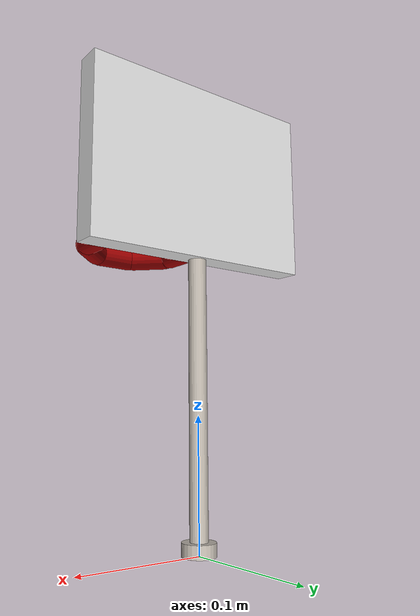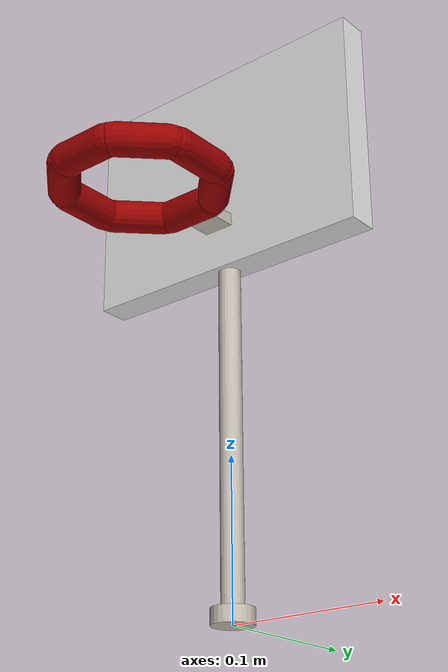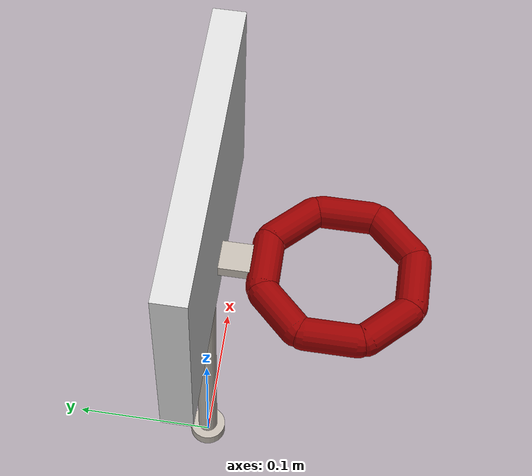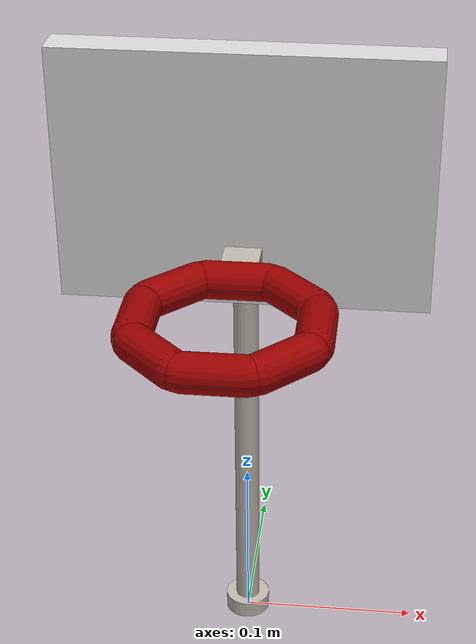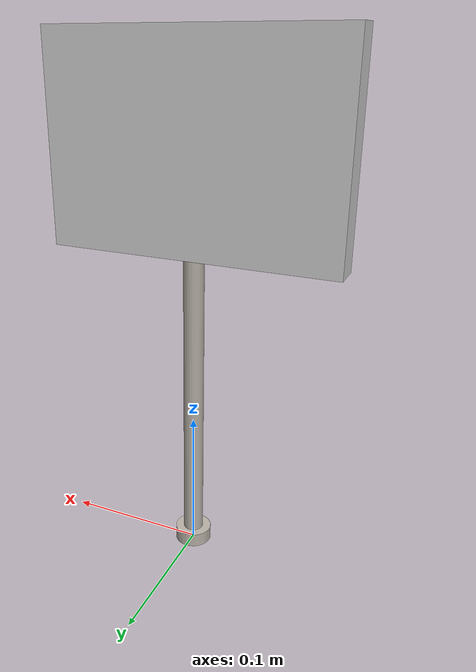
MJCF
<mujoco>
    <compiler angle="radian" inertiafromgeom="auto" inertiagrouprange="4 5"/>
    <asset>
        <texture name="T_bskt" type="cube" file="../textures/metal1.png"/>

        <material name="bskt_col" rgba="0.3 0.3 1.0 0.5" shininess="0" specular="0"/>
        <material name="bskt_red" rgba=".6 0 0 1" shininess="1" reflectance=".7" specular=".5"/>
        <material name="bskt_orange" rgba=".7 .35 0 1" shininess="1" reflectance=".7" specular=".5"/>
        <material name="bskt_black" rgba=".15 .15 .15 1" shininess="1" reflectance=".7" specular=".5"/>

        <material name="bskt_white" rgba=".85 .85 .85 1" shininess="1" reflectance=".7" specular=".5"/>
        <material name="bskt_metal" texture="T_bskt" shininess="1" reflectance=".7" specular=".5"/>

        <mesh file="../objects/meshes/basketball/backboard.stl" name="backboard" scale="1 1 1" />
        <mesh file="../objects/meshes/basketball/backboardsquareinner.stl" name="backboardsquareinner" scale="1 1 1" />
        <mesh file="../objects/meshes/basketball/backboardsquareouter.stl" name="backboardsquareouter" scale="1 1 1" />
        <mesh file="../objects/meshes/basketball/basketballinner.stl" name="basketballinner" scale="1 1 1" />
        <mesh file="../objects/meshes/basketball/basketballouter.stl" name="basketballouter" scale="1 1 1" />
        <mesh file="../objects/meshes/basketball/hoop.stl" name="hoop" scale="1 1 1" />
        <mesh file="../objects/meshes/basketball/pole.stl" name="pole" scale="1 1 1" />

    </asset>
    <default>

      <default class="basketball_base">
          <joint armature="0.001" damping="2" limited="true"/>
          <geom conaffinity="0" contype="0" group="1" type="mesh"/>
          <position ctrllimited="true" ctrlrange="0 1.57"/>
          <default class="basketball_viz">
              <geom condim="4" type="mesh"/>
          </default>
          <default class="basketball_col">
              <geom conaffinity="1" condim="3" contype="1" group="4" material="bskt_col" solimp="0.99 0.99 0.01" solref="0.01 1"/>
          </default>
      </default>
    </default>

    <worldbody>
                <body name="backboardlink">
                    <geom  material="bskt_white" pos="0 0 0.29" size="0.1 0.01 0.07" type="box" mass=".2"/>
                    <geom  material="bskt_metal" pos="0 0 0.118" size="0.007 0.108" type="cylinder" mass=".2"/>
                    <geom  material="bskt_metal" pos="0 0 0.005" size="0.013 0.005" type="cylinder" mass=".01"/>
                    <body name="hooplink" pos="0 -0.083 0.25">
                        <geom material="bskt_metal" pos="0 .06  0" size="0.01 0.014 0.004" type="box" />

                        <geom  material="bskt_red" euler="1.571 0.785 0" pos="0.031 0.032 -0.001" size="0.01 0.016" type="capsule" />
                        <geom  material="bskt_red" euler="0 1.57 0" pos="0 0.045 -0.001" size="0.01 0.016" type="capsule" />
                        <geom  material="bskt_red" euler="1.57 0 0" pos="0.044 0 -0.001" size="0.01 0.016" type="capsule" />
                        <geom  material="bskt_red" euler="1.57 0 0" pos="-0.044 0 -0.001" size="0.01 0.016" type="capsule" />
                        <geom  material="bskt_red" euler="0 1.57 0" pos="0 -0.045 -0.001" size="0.01 0.016" type="capsule" />
                        <geom  material="bskt_red" euler="1.57 -0.785  0" pos="-0.031 0.032 -0.001" size="0.01 0.016" type="capsule" />
                        <geom  material="bskt_red" euler="1.57 0.785 0" pos="-0.031 -0.032 -0.001" size="0.01 0.016" type="capsule" />
                        <geom  material="bskt_red" euler="1.57 -0.785 0" pos="0.031 -0.032 -0.001" size="0.01 0.016" type="capsule" />
                        <body name="goal" size="0.01"></body>
                    </body>
                </body>
    </worldbody>
</mujoco>
